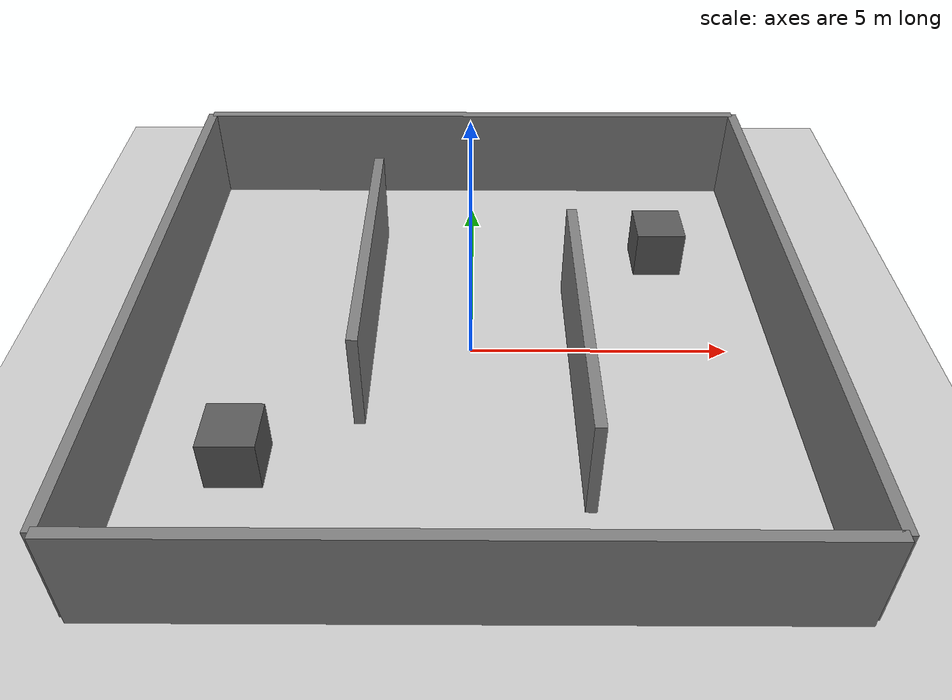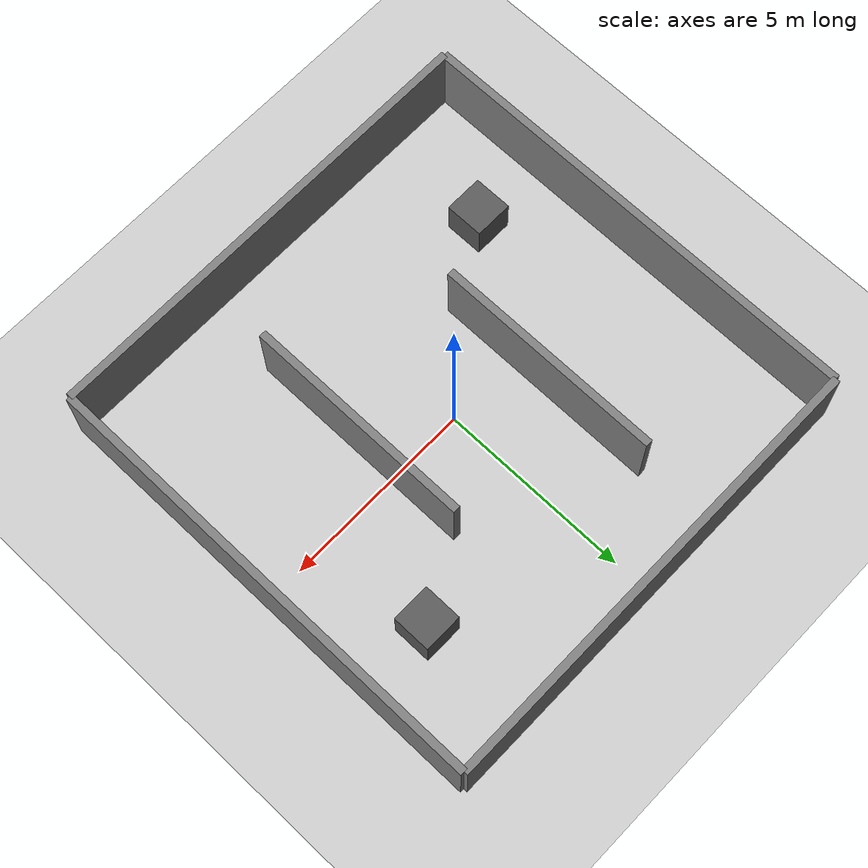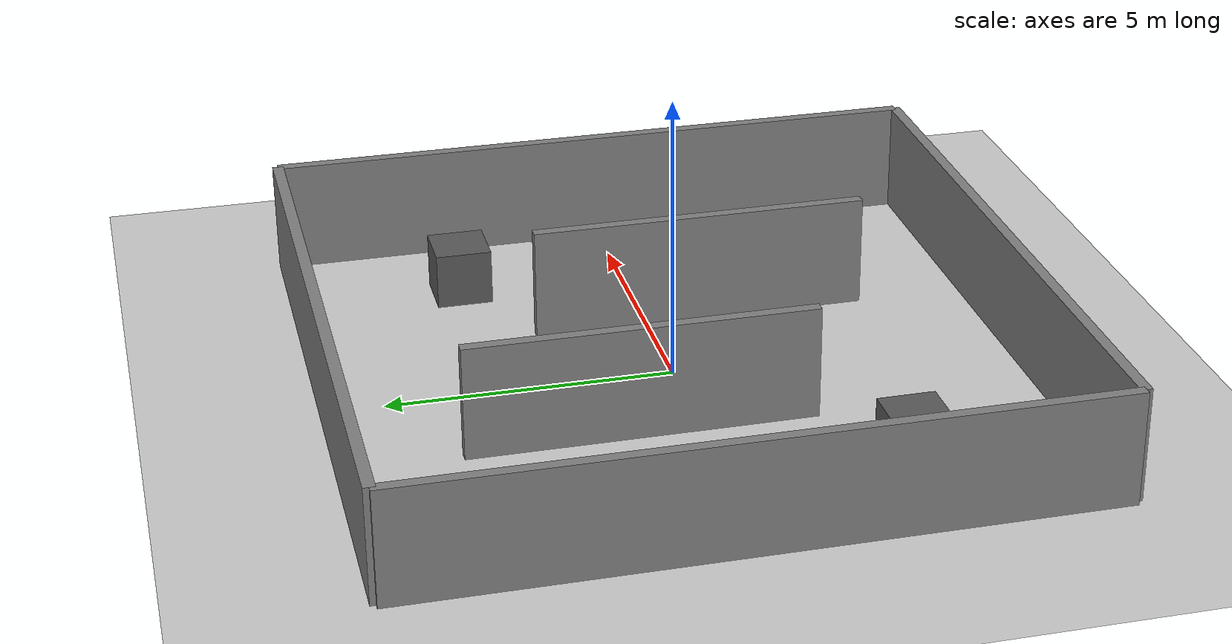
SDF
<?xml version="1.0" ?>
<sdf version="1.6">
  <world name="mapping_world">

    <!-- Physics -->
    <physics name="1ms" type="ignored">
      <max_step_size>0.001</max_step_size>
      <real_time_factor>1.0</real_time_factor>
    </physics>

    <!-- Gazebo Systems -->
    <plugin filename="gz-sim-physics-system"
            name="gz::sim::systems::Physics"/>

    <plugin filename="gz-sim-user-commands-system"
            name="gz::sim::systems::UserCommands"/>

    <plugin filename="gz-sim-scene-broadcaster-system"
            name="gz::sim::systems::SceneBroadcaster"/>

    <plugin filename="gz-sim-sensors-system"
            name="gz::sim::systems::Sensors">
      <render_engine>ogre2</render_engine>
    </plugin>
    <plugin filename="gz-sim-imu-system"
            name="gz::sim::systems::Imu">
    </plugin>

    <plugin filename="gz-sim-contact-system"
            name="gz::sim::systems::Contact"/>

    <!-- Sun -->
    <light type="directional" name="sun">
      <pose>0 0 10 0 0 0</pose>
      <cast_shadows>true</cast_shadows>
      <diffuse>1 1 1 1</diffuse>
      <specular>0.2 0.2 0.2 1</specular>
      <direction>-0.5 0.1 -0.9</direction>
    </light>

    <!-- Invisible Floor -->
    <model name="ground_plane">
      <static>true</static>
      <link name="link">
        <collision name="collision">
          <geometry>
            <plane>
              <normal>0 0 1</normal>
              <size>100 100</size>
            </plane>
          </geometry>
        </collision>

        <visual name="visual">
          <geometry>
            <plane>
              <normal>0 0 1</normal>
              <size>100 100</size>
            </plane>
          </geometry>

          <transparency>1.0</transparency>
        </visual>
      </link>
    </model>

    <!-- NORTH WALL -->
    <model name="north_wall">
      <static>true</static>
      <pose>0 6 1 0 0 0</pose>
      <link name="link">
        <collision name="collision">
          <geometry>
            <box><size>12 0.2 2</size></box>
          </geometry>
        </collision>

        <visual name="visual">
          <geometry>
            <box><size>12 0.2 2</size></box>
          </geometry>
          <material>
            <ambient>0.4 0.4 0.4 1</ambient>
            <diffuse>0.5 0.5 0.5 1</diffuse>
            <specular>0.05 0.05 0.05 1</specular>
          </material>
        </visual>
      </link>
    </model>

    <!-- SOUTH WALL -->
    <model name="south_wall">
      <static>true</static>
      <pose>0 -6 1 0 0 0</pose>
      <link name="link">
        <collision name="collision">
          <geometry>
            <box><size>12 0.2 2</size></box>
          </geometry>
        </collision>

        <visual name="visual">
          <geometry>
            <box><size>12 0.2 2</size></box>
          </geometry>
          <material>
            <ambient>0.4 0.4 0.4 1</ambient>
            <diffuse>0.5 0.5 0.5 1</diffuse>
            <specular>0.05 0.05 0.05 1</specular>
          </material>
        </visual>
      </link>
    </model>

    <!-- EAST WALL -->
    <model name="east_wall">
      <static>true</static>
      <pose>6 0 1 0 0 0</pose>
      <link name="link">
        <collision name="collision">
          <geometry>
            <box><size>0.2 12 2</size></box>
          </geometry>
        </collision>

        <visual name="visual">
          <geometry>
            <box><size>0.2 12 2</size></box>
          </geometry>
          <material>
            <ambient>0.4 0.4 0.4 1</ambient>
            <diffuse>0.5 0.5 0.5 1</diffuse>
            <specular>0.05 0.05 0.05 1</specular>
          </material>
        </visual>
      </link>
    </model>

    <!-- WEST WALL -->
    <model name="west_wall">
      <static>true</static>
      <pose>-6 0 1 0 0 0</pose>
      <link name="link">
        <collision name="collision">
          <geometry>
            <box><size>0.2 12 2</size></box>
          </geometry>
        </collision>

        <visual name="visual">
          <geometry>
            <box><size>0.2 12 2</size></box>
          </geometry>
          <material>
            <ambient>0.4 0.4 0.4 1</ambient>
            <diffuse>0.5 0.5 0.5 1</diffuse>
            <specular>0.05 0.05 0.05 1</specular>
          </material>
        </visual>
      </link>
    </model>

    <!-- INTERNAL WALL 1 -->
    <model name="wall_1">
      <static>true</static>
      <pose>-2 1 1 0 0 0</pose>
      <link name="link">
        <collision name="collision">
          <geometry>
            <box><size>0.2 6 2</size></box>
          </geometry>
        </collision>

        <visual name="visual">
          <geometry>
            <box><size>0.2 6 2</size></box>
          </geometry>
          <material>
            <ambient>0.4 0.4 0.4 1</ambient>
            <diffuse>0.5 0.5 0.5 1</diffuse>
            <specular>0.05 0.05 0.05 1</specular>
          </material>
        </visual>
      </link>
    </model>

    <!-- INTERNAL WALL 2 -->
    <model name="wall_2">
      <static>true</static>
      <pose>2 -1 1 0 0 0</pose>
      <link name="link">
        <collision name="collision">
          <geometry>
            <box><size>0.2 6 2</size></box>
          </geometry>
        </collision>

        <visual name="visual">
          <geometry>
            <box><size>0.2 6 2</size></box>
          </geometry>
          <material>
            <ambient>0.4 0.4 0.4 1</ambient>
            <diffuse>0.5 0.5 0.5 1</diffuse>
            <specular>0.05 0.05 0.05 1</specular>
          </material>
        </visual>
      </link>
    </model>

    <!-- OBSTACLES -->
    <model name="box1">
      <static>true</static>
      <pose>-4 -3 0.5 0 0 0</pose>
      <link name="link">
        <collision name="collision">
          <geometry>
            <box><size>1 1 1</size></box>
          </geometry>
        </collision>

        <visual name="visual">
          <geometry>
            <box><size>1 1 1</size></box>
          </geometry>
          <material>
            <ambient>0.25 0.25 0.25 1</ambient>
            <diffuse>0.35 0.35 0.35 1</diffuse>
          </material>
        </visual>
      </link>
    </model>

    <model name="box2">
      <static>true</static>
      <pose>4 3 0.5 0 0 0</pose>
      <link name="link">
        <collision name="collision">
          <geometry>
            <box><size>1 1 1</size></box>
          </geometry>
        </collision>

        <visual name="visual">
          <geometry>
            <box><size>1 1 1</size></box>
          </geometry>
          <material>
            <ambient>0.25 0.25 0.25 1</ambient>
            <diffuse>0.35 0.35 0.35 1</diffuse>
          </material>
        </visual>
      </link>
    </model>
  </world>
</sdf>
